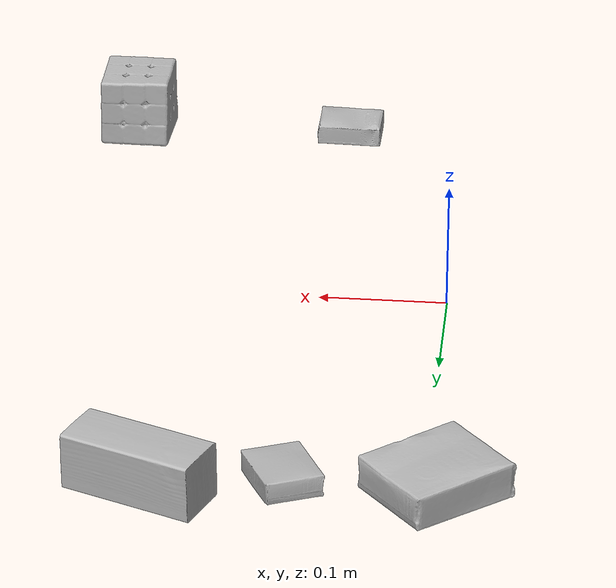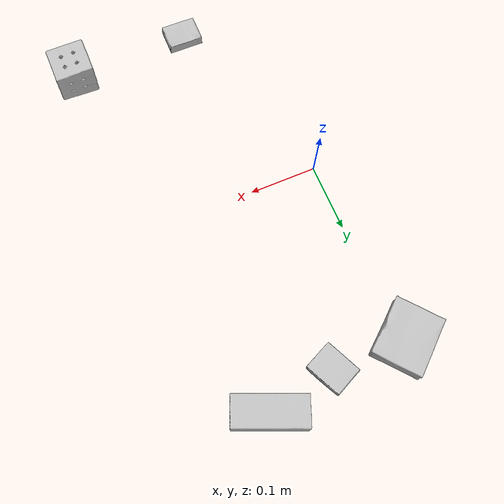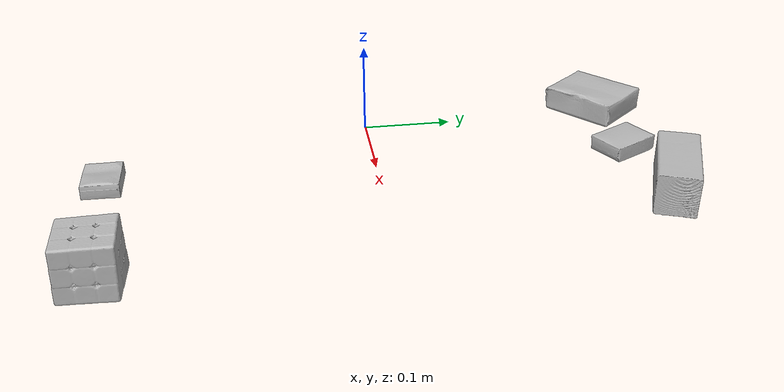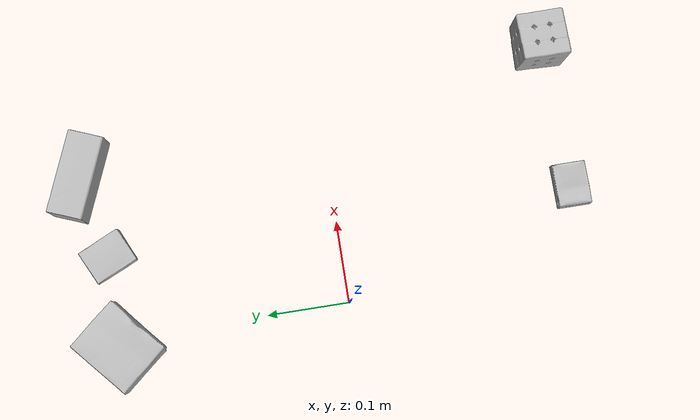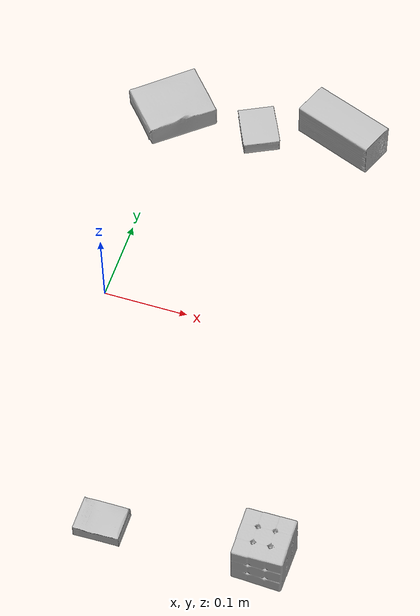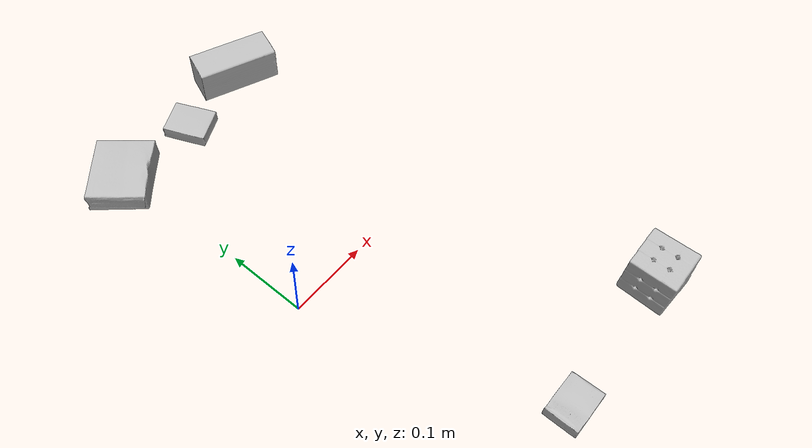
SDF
<?xml version="1.0" ?>
<sdf version="1.4">
  <world name="default">
    <light name="light1" type="point">
      <pose>0 0 1 0 0 0</pose>
      <diffuse>3 3 3 1</diffuse>
      <specular>3 3 3 1</specular>
    </light>
    <light name="light2" type="point">
      <pose>0 0.5 2 0 0 0</pose>
      <diffuse>1 1 1 1</diffuse>
      <specular>1 1 1 1</specular>
    </light>
    <light name="light3" type="point">
      <pose>0 0.5 2 0 0 0</pose>
      <diffuse>3 3 3 1</diffuse>
      <specular>3 3 3 1</specular>
    </light>
    <scene>
      <ambient>0.7 0.7 0.7</ambient>
    </scene>
    <model name="box1">
      <link name="link_box1">
        <collision name="default">
          <geometry>
            <mesh>
              <uri>model://rubiks_cube/collision_meshes/collision.obj</uri>
              <scale>1.0 1.0 1.0</scale>
            </mesh>
          </geometry>
          <surface>
            <friction>
              <ode>
                <mu>0.5</mu>
                <mu2>0.5</mu2>
              </ode>
            </friction>
          </surface>
        </collision>
        <visual name="default">
          <geometry>
            <mesh>
              <uri>model://rubiks_cube/visual_meshes/visual.dae</uri>
              <scale>1.0 1.0 1.0</scale>
            </mesh>
          </geometry>
        </visual>
        <inertial>
          <mass>0.16542086005210876</mass>
          <pose>2.6721041649580002e-05 5.256967051536776e-05 -7.264316536748083e-06 -0.054673137900176624 -0.09813866632394339 -0.03445580911338559</pose>
          <inertia>
            <ixx>9.140613e-05</ixx>
            <iyy>9.097988e-05</iyy>
            <izz>9.216359e-05</izz>
            <ixy>0</ixy>
            <ixz>0</ixz>
            <iyz>0</iyz>
          </inertia>
        </inertial>
      </link>
      <pose>0.27993151545524597 -0.2802274823188782 0.02867899462580681 -3.2014210279291636e-08 -2.793960592833607e-09 4.2468304344323645e-07</pose>
    </model>
    <model name="box2">
      <link name="link_box2">
        <collision name="default">
          <geometry>
            <mesh>
              <uri>model://cracker_box/collision_meshes/collision.obj</uri>
              <scale>0.25 0.25 0.25</scale>
            </mesh>
          </geometry>
          <surface>
            <friction>
              <ode>
                <mu>0.5</mu>
                <mu2>0.5</mu2>
              </ode>
            </friction>
          </surface>
        </collision>
        <visual name="default">
          <geometry>
            <mesh>
              <uri>model://cracker_box/visual_meshes/visual.dae</uri>
              <scale>0.25 0.25 0.25</scale>
            </mesh>
          </geometry>
        </visual>
        <inertial>
          <mass>0.04381135478615761</mass>
          <pose>0.00023660462466068566 6.358561222441494e-05 -0.0004257383698131889 -0.00031620747829542317 -0.011106489600678707 0.002546794302661479</pose>
          <inertia>
            <ixx>6.9647826e-06</ixx>
            <iyy>1.1500225e-05</iyy>
            <izz>1.6411877e-05</izz>
            <ixy>0</ixy>
            <ixz>0</ixz>
            <iyz>0</iyz>
          </inertia>
        </inertial>
      </link>
      <pose>0.09993372112512589 -0.2898489534854889 0.009120452217757702 -0.011788082977255249 -0.007367118441076774 5.31300743707119e-05</pose>
    </model>
    <model name="box3">
      <link name="link_box3">
        <collision name="default">
          <geometry>
            <mesh>
              <uri>model://gelatin_box/collision_meshes/collision.obj</uri>
              <scale>1.0 1.0 1.0</scale>
            </mesh>
          </geometry>
          <surface>
            <friction>
              <ode>
                <mu>0.5</mu>
                <mu2>0.5</mu2>
              </ode>
            </friction>
          </surface>
        </collision>
        <visual name="default">
          <geometry>
            <mesh>
              <uri>model://gelatin_box/visual_meshes/visual.dae</uri>
              <scale>1.0 1.0 1.0</scale>
            </mesh>
          </geometry>
        </visual>
        <inertial>
          <mass>0.23367169499397278</mass>
          <pose>0.0004319618456065655 0.00011156871914863586 -0.0003640321083366871 -0.0010503719733775277 -0.004755817758083372 0.016440561333906818</pose>
          <inertia>
            <ixx>0.00016495313</ixx>
            <iyy>0.00011782518</iyy>
            <izz>0.00025109548</izz>
            <ixy>0</ixy>
            <ixz>0</ixz>
            <iyz>0</iyz>
          </inertia>
        </inertial>
      </link>
      <pose>-0.010134980082511902 0.28002655506134033 0.015168316662311554 0.005597514687577185 -0.007304581255157958 -0.8736660117712031</pose>
    </model>
    <model name="box4">
      <link name="link_box4">
        <collision name="default">
          <geometry>
            <mesh>
              <uri>model://wood_block/collision_meshes/collision.obj</uri>
              <scale>0.5 0.5 0.5</scale>
            </mesh>
          </geometry>
          <surface>
            <friction>
              <ode>
                <mu>0.5</mu>
                <mu2>0.5</mu2>
              </ode>
            </friction>
          </surface>
        </collision>
        <visual name="default">
          <geometry>
            <mesh>
              <uri>model://wood_block/visual_meshes/visual.dae</uri>
              <scale>0.5 0.5 0.5</scale>
            </mesh>
          </geometry>
        </visual>
        <inertial>
          <mass>0.20833587646484375</mass>
          <pose>-2.9066577553749084e-06 -0.000285404734313488 0.00013204291462898254 -0.05220975529367638 -0.0051926946165042134 -0.0068613779519224715</pose>
          <inertia>
            <ixx>6.9696216e-05</ixx>
            <iyy>0.0002201704</iyy>
            <izz>0.00021934687</izz>
            <ixy>0</ixy>
            <ixz>0</ixz>
            <iyz>0</iyz>
          </inertia>
        </inertial>
      </link>
      <pose>0.20025476813316345 0.30059462785720825 0.0226292684674263 -0.005208458819643113 0.005718726215191401 -0.3839113138503504</pose>
    </model>
    <model name="box5">
      <link name="link_box5">
        <collision name="default">
          <geometry>
            <mesh>
              <uri>model://pudding_box/collision_meshes/collision.obj</uri>
              <scale>0.5 0.5 0.5</scale>
            </mesh>
          </geometry>
          <surface>
            <friction>
              <ode>
                <mu>0.5</mu>
                <mu2>0.5</mu2>
              </ode>
            </friction>
          </surface>
        </collision>
        <visual name="default">
          <geometry>
            <mesh>
              <uri>model://pudding_box/visual_meshes/visual.dae</uri>
              <scale>0.5 0.5 0.5</scale>
            </mesh>
          </geometry>
        </visual>
        <inertial>
          <mass>0.032720133662223816</mass>
          <pose>0.00024474109522998333 0.0004033942532259971 -0.0002594413817860186 0.005213102275410761 -0.0066037963999523224 0.020079827026921356</pose>
          <inertia>
            <ixx>9.2471055e-06</ixx>
            <iyy>6.221519e-06</iyy>
            <izz>1.3655769e-05</izz>
            <ixy>0</ixy>
            <ixz>0</ixz>
            <iyz>0</iyz>
          </inertia>
        </inertial>
      </link>
      <pose>0.09986885637044907 0.2796303331851959 0.009862902574241161 0.022348605422828932 -0.01139162624771633 0.43651795746434546</pose>
    </model>
  </world>
</sdf>
